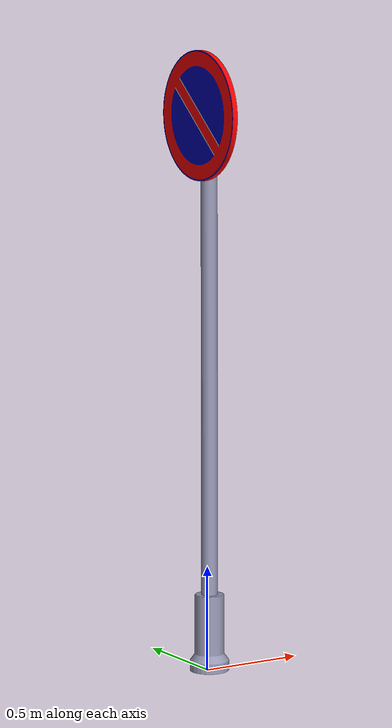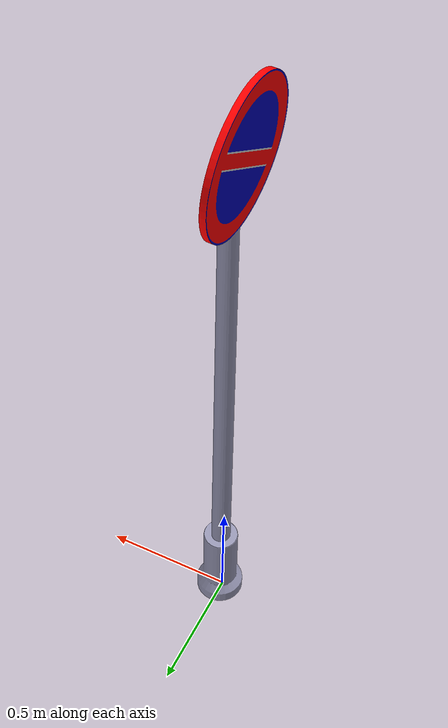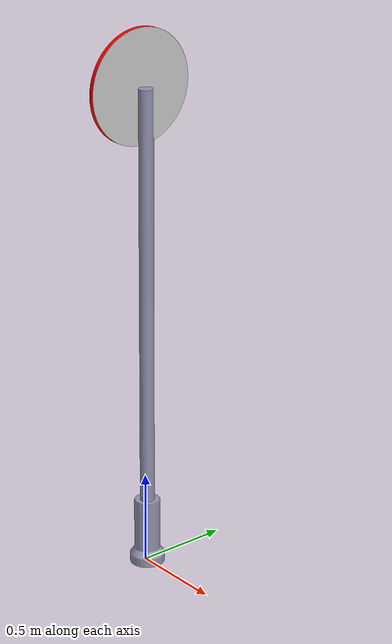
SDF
<?xml version="1.0"?>
<sdf version="1.5">
  <model name='ParkEtmekYasaktirTabelasi'>
    <static>true</static>
    <link name="body">
      <pose>0 0 0 0 0 0</pose>

        <visual name="visual">
          <geometry>
            <mesh><uri>model://ParkEtmekYasaktirTabelasi/meshes/ParkEtmekYasaktirTabelasi.dae</uri></mesh>
          </geometry>
        </visual>

        <collision name="collision">
          <geometry>
            <mesh><uri>model://ParkEtmekYasaktirTabelasi/meshes/ParkEtmekYasaktirTabelasi.dae</uri></mesh>
          </geometry>
        </collision>

        <!-- TODO: Replace with accurate values of mass and inertia -->
        <inertial>
          <mass>1.0</mass>
          <inertia>
            <ixx>0.1</ixx>
            <iyy>0.1</iyy>
            <izz>0.1</izz>
          </inertia>
        </inertial>
    </link>
  </model>
</sdf>
